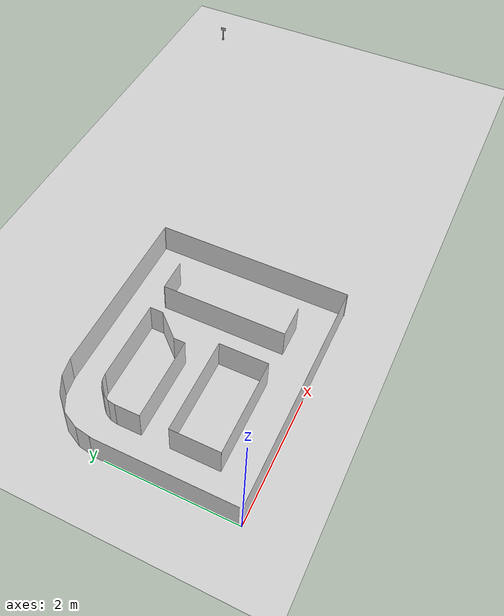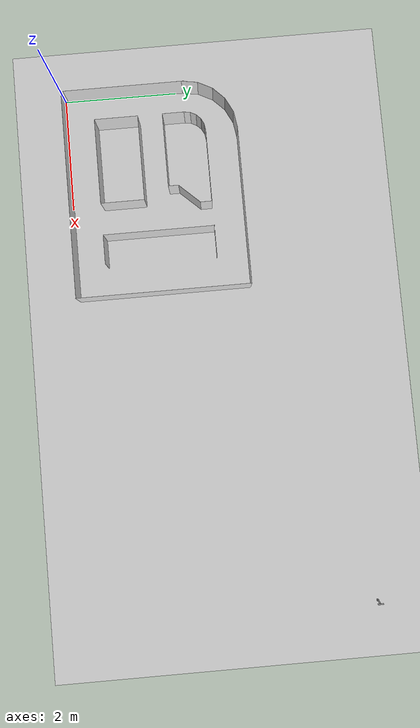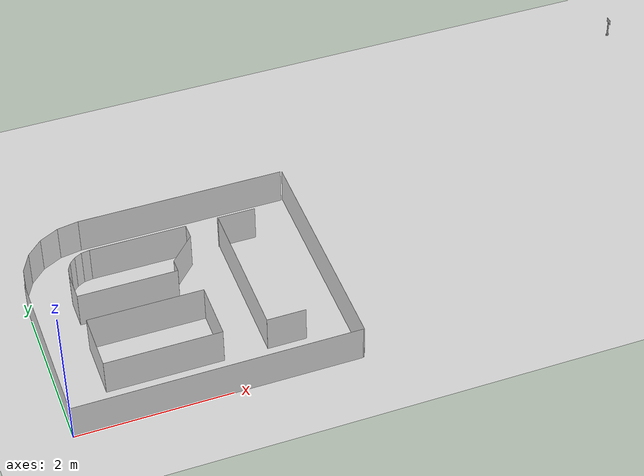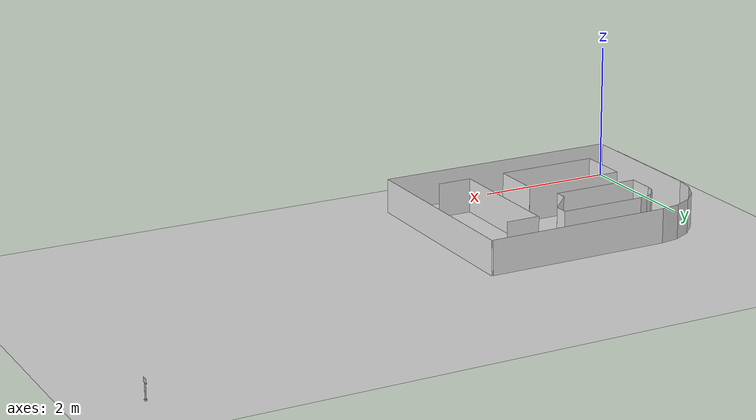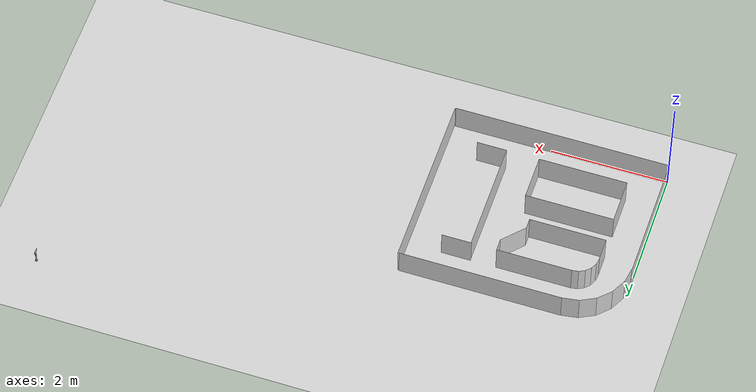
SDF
<sdf version="1.6">
 <world name="default">
  <light name="sun" type="directional">
   <pose>0 0 10 0 -0 0</pose>
   <diffuse>0.8 0.8 0.8 1</diffuse>
   <specular>0.1 0.1 0.1 1</specular>
   <attenuation>
    <range>1000</range>
    <constant>0.9</constant>
    <linear>0.01</linear>
    <quadratic>0.001</quadratic>
   </attenuation>
   <direction>-0.5 0.5 -1</direction>
  </light>
  <model name="ground_plane">
   <static>1</static>
   <link name="link">
    <collision name="collision">
     <geometry><plane><normal>0 0 1</normal><size>100 100</size></plane></geometry>
     <surface><friction><ode><mu>100</mu><mu2>50</mu2></ode></friction></surface>
    </collision>
    <visual name="visual">
     <cast_shadows>0</cast_shadows>
     <geometry><plane><normal>0 0 1</normal><size>100 100</size></plane></geometry>
     <material>
      <script><uri>file://media/materials/scripts/gazebo.material</uri><name>Gazebo/Grey</name></script>
     </material>
    </visual>
   </link>
  </model>
  <model name="wall_0">
   <static>1</static>
   <link name="link">
    <collision name="collision"><geometry><box><size>2.1336 0.001 1</size></box></geometry></collision>
    <visual name="visual">
     <geometry><box><size>2.1336 0.001 1</size></box></geometry>
     <material>
      <script><name>Gazebo/White</name><uri>file://media/materials/scripts/gazebo.material</uri></script>
     </material>
    </visual>
   </link>
   <pose>0 1.11352 0 0 -0 1.5708</pose>
  </model>
  <model name="wall_1">
   <static>1</static>
   <link name="link">
    <collision name="collision"><geometry><box><size>0.286088 0.001 1</size></box></geometry></collision>
    <visual name="visual">
     <geometry><box><size>0.286088 0.001 1</size></box></geometry>
     <material>
      <script><name>Gazebo/White</name><uri>file://media/materials/scripts/gazebo.material</uri></script>
     </material>
    </visual>
   </link>
   <pose>0.022377 2.27489 0 0 -0 1.41372</pose>
  </model>
  <model name="wall_2">
   <static>1</static>
   <link name="link">
    <collision name="collision"><geometry><box><size>0.286088 0.001 1</size></box></geometry></collision>
    <visual name="visual">
     <geometry><box><size>0.286088 0.001 1</size></box></geometry>
     <material>
      <script><name>Gazebo/White</name><uri>file://media/materials/scripts/gazebo.material</uri></script>
     </material>
    </visual>
   </link>
   <pose>0.109695 2.54362 0 0 -0 1.09956</pose>
  </model>
  <model name="wall_3">
   <static>1</static>
   <link name="link">
    <collision name="collision"><geometry><box><size>0.286088 0.001 1</size></box></geometry></collision>
    <visual name="visual">
     <geometry><box><size>0.286088 0.001 1</size></box></geometry>
     <material>
      <script><name>Gazebo/White</name><uri>file://media/materials/scripts/gazebo.material</uri></script>
     </material>
    </visual>
   </link>
   <pose>0.275783 2.77222 0 0 -0 0.785398</pose>
  </model>
  <model name="wall_4">
   <static>1</static>
   <link name="link">
    <collision name="collision"><geometry><box><size>0.286088 0.001 1</size></box></geometry></collision>
    <visual name="visual">
     <geometry><box><size>0.286088 0.001 1</size></box></geometry>
     <material>
      <script><name>Gazebo/White</name><uri>file://media/materials/scripts/gazebo.material</uri></script>
     </material>
    </visual>
   </link>
   <pose>0.504383 2.93831 0 0 -0 0.471239</pose>
  </model>
  <model name="wall_5">
   <static>1</static>
   <link name="link">
    <collision name="collision"><geometry><box><size>0.286088 0.001 1</size></box></geometry></collision>
    <visual name="visual">
     <geometry><box><size>0.286088 0.001 1</size></box></geometry>
     <material>
      <script><name>Gazebo/White</name><uri>file://media/materials/scripts/gazebo.material</uri></script>
     </material>
    </visual>
   </link>
   <pose>0.773119 3.02563 0 0 -0 0.15708</pose>
  </model>
  <model name="wall_6">
   <static>1</static>
   <link name="link">
    <collision name="collision"><geometry><box><size>2.74321 0.001 1</size></box></geometry></collision>
    <visual name="visual">
     <geometry><box><size>2.74321 0.001 1</size></box></geometry>
     <material>
      <script><name>Gazebo/White</name><uri>file://media/materials/scripts/gazebo.material</uri></script>
     </material>
    </visual>
   </link>
   <pose>2.286 3.04801 0 0 -0 0</pose>
  </model>
  <model name="wall_7">
   <static>1</static>
   <link name="link">
    <collision name="collision"><geometry><box><size>3.04801 0.001 1</size></box></geometry></collision>
    <visual name="visual">
     <geometry><box><size>3.04801 0.001 1</size></box></geometry>
     <material>
      <script><name>Gazebo/White</name><uri>file://media/materials/scripts/gazebo.material</uri></script>
     </material>
    </visual>
   </link>
   <pose>3.67683 1.52518 0 0 0 -1.5708</pose>
  </model>
  <model name="wall_8">
   <static>1</static>
   <link name="link">
    <collision name="collision"><geometry><box><size>3.65761 0.001 1</size></box></geometry></collision>
    <visual name="visual">
     <geometry><box><size>3.65761 0.001 1</size></box></geometry>
     <material>
      <script><name>Gazebo/White</name><uri>file://media/materials/scripts/gazebo.material</uri></script>
     </material>
    </visual>
   </link>
   <pose>1.83626 0.009034 0 0 0 -3.14159</pose>
  </model>
  <model name="wall_9">
   <static>1</static>
   <link name="link">
    <collision name="collision"><geometry><box><size>0.762002 0.001 1</size></box></geometry></collision>
    <visual name="visual">
     <geometry><box><size>0.762002 0.001 1</size></box></geometry>
     <material>
      <script><name>Gazebo/White</name><uri>file://media/materials/scripts/gazebo.material</uri></script>
     </material>
    </visual>
   </link>
   <pose>0.558801 0.939802 0 0 -0 1.5708</pose>
  </model>
  <model name="wall_10">
   <static>1</static>
   <link name="link">
    <collision name="collision"><geometry><box><size>1.4986 0.001 1</size></box></geometry></collision>
    <visual name="visual">
     <geometry><box><size>1.4986 0.001 1</size></box></geometry>
     <material>
      <script><name>Gazebo/White</name><uri>file://media/materials/scripts/gazebo.material</uri></script>
     </material>
    </visual>
   </link>
   <pose>1.3081 1.3208 0 0 -0 0</pose>
  </model>
  <model name="wall_11">
   <static>1</static>
   <link name="link">
    <collision name="collision"><geometry><box><size>0.762002 0.001 1</size></box></geometry></collision>
    <visual name="visual">
     <geometry><box><size>0.762002 0.001 1</size></box></geometry>
     <material>
      <script><name>Gazebo/White</name><uri>file://media/materials/scripts/gazebo.material</uri></script>
     </material>
    </visual>
   </link>
   <pose>2.0574 0.939802 0 0 0 -1.5708</pose>
  </model>
  <model name="wall_12">
   <static>1</static>
   <link name="link">
    <collision name="collision"><geometry><box><size>1.4986 0.001 1</size></box></geometry></collision>
    <visual name="visual">
     <geometry><box><size>1.4986 0.001 1</size></box></geometry>
     <material>
      <script><name>Gazebo/White</name><uri>file://media/materials/scripts/gazebo.material</uri></script>
     </material>
    </visual>
   </link>
   <pose>1.3081 0.558801 0 0 0 -3.14159</pose>
  </model>
  <model name="wall_13">
   <static>1</static>
   <link name="link">
    <collision name="collision"><geometry><box><size>0.381001 0.001 1</size></box></geometry></collision>
    <visual name="visual">
     <geometry><box><size>0.381001 0.001 1</size></box></geometry>
     <material>
      <script><name>Gazebo/White</name><uri>file://media/materials/scripts/gazebo.material</uri></script>
     </material>
    </visual>
   </link>
   <pose>0.558801 1.9431 0 0 -0 1.5708</pose>
  </model>
  <model name="wall_14">
   <static>1</static>
   <link name="link">
    <collision name="collision"><geometry><box><size>0.111256 0.001 1</size></box></geometry></collision>
    <visual name="visual">
     <geometry><box><size>0.111256 0.001 1</size></box></geometry>
     <material>
      <script><name>Gazebo/White</name><uri>file://media/materials/scripts/gazebo.material</uri></script>
     </material>
    </visual>
   </link>
   <pose>0.567503 2.18855 0 0 -0 1.41372</pose>
  </model>
  <model name="wall_15">
   <static>1</static>
   <link name="link">
    <collision name="collision"><geometry><box><size>0.111256 0.001 1</size></box></geometry></collision>
    <visual name="visual">
     <geometry><box><size>0.111256 0.001 1</size></box></geometry>
     <material>
      <script><name>Gazebo/White</name><uri>file://media/materials/scripts/gazebo.material</uri></script>
     </material>
    </visual>
   </link>
   <pose>0.60146 2.29306 0 0 -0 1.09956</pose>
  </model>
  <model name="wall_16">
   <static>1</static>
   <link name="link">
    <collision name="collision"><geometry><box><size>0.111256 0.001 1</size></box></geometry></collision>
    <visual name="visual">
     <geometry><box><size>0.111256 0.001 1</size></box></geometry>
     <material>
      <script><name>Gazebo/White</name><uri>file://media/materials/scripts/gazebo.material</uri></script>
     </material>
    </visual>
   </link>
   <pose>0.66605 2.38196 0 0 -0 0.785398</pose>
  </model>
  <model name="wall_17">
   <static>1</static>
   <link name="link">
    <collision name="collision"><geometry><box><size>0.111256 0.001 1</size></box></geometry></collision>
    <visual name="visual">
     <geometry><box><size>0.111256 0.001 1</size></box></geometry>
     <material>
      <script><name>Gazebo/White</name><uri>file://media/materials/scripts/gazebo.material</uri></script>
     </material>
    </visual>
   </link>
   <pose>0.75495 2.44655 0 0 -0 0.471239</pose>
  </model>
  <model name="wall_18">
   <static>1</static>
   <link name="link">
    <collision name="collision"><geometry><box><size>0.111256 0.001 1</size></box></geometry></collision>
    <visual name="visual">
     <geometry><box><size>0.111256 0.001 1</size></box></geometry>
     <material>
      <script><name>Gazebo/White</name><uri>file://media/materials/scripts/gazebo.material</uri></script>
     </material>
    </visual>
   </link>
   <pose>0.859458 2.4805 0 0 -0 0.15708</pose>
  </model>
  <model name="wall_19">
   <static>1</static>
   <link name="link">
    <collision name="collision"><geometry><box><size>1.27 0.001 1</size></box></geometry></collision>
    <visual name="visual">
     <geometry><box><size>1.27 0.001 1</size></box></geometry>
     <material>
      <script><name>Gazebo/White</name><uri>file://media/materials/scripts/gazebo.material</uri></script>
     </material>
    </visual>
   </link>
   <pose>1.5494 2.48921 0 0 -0 0</pose>
  </model>
  <model name="wall_20">
   <static>1</static>
   <link name="link">
    <collision name="collision"><geometry><box><size>0.2032 0.001 1</size></box></geometry></collision>
    <visual name="visual">
     <geometry><box><size>0.2032 0.001 1</size></box></geometry>
     <material>
      <script><name>Gazebo/White</name><uri>file://media/materials/scripts/gazebo.material</uri></script>
     </material>
    </visual>
   </link>
   <pose>2.1844 2.38761 0 0 0 -1.5708</pose>
  </model>
  <model name="wall_21">
   <static>1</static>
   <link name="link">
    <collision name="collision"><geometry><box><size>0.485267 0.001 1</size></box></geometry></collision>
    <visual name="visual">
     <geometry><box><size>0.485267 0.001 1</size></box></geometry>
     <material>
      <script><name>Gazebo/White</name><uri>file://media/materials/scripts/gazebo.material</uri></script>
     </material>
    </visual>
   </link>
   <pose>2.0193 2.1082 0 0 0 -2.31917</pose>
  </model>
  <model name="wall_22">
   <static>1</static>
   <link name="link">
    <collision name="collision"><geometry><box><size>0.1778 0.001 1</size></box></geometry></collision>
    <visual name="visual">
     <geometry><box><size>0.1778 0.001 1</size></box></geometry>
     <material>
      <script><name>Gazebo/White</name><uri>file://media/materials/scripts/gazebo.material</uri></script>
     </material>
    </visual>
   </link>
   <pose>1.8542 1.8415 0 0 0 -1.5708</pose>
  </model>
  <model name="wall_23">
   <static>1</static>
   <link name="link">
    <collision name="collision"><geometry><box><size>1.2954 0.001 1</size></box></geometry></collision>
    <visual name="visual">
     <geometry><box><size>1.2954 0.001 1</size></box></geometry>
     <material>
      <script><name>Gazebo/White</name><uri>file://media/materials/scripts/gazebo.material</uri></script>
     </material>
    </visual>
   </link>
   <pose>1.2065 1.7526 0 0 0 -3.14159</pose>
  </model>
  <model name="wall_24">
   <static>1</static>
   <link name="link">
    <collision name="collision"><geometry><box><size>0.508001 0.001 1</size></box></geometry></collision>
    <visual name="visual">
     <geometry><box><size>0.508001 0.001 1</size></box></geometry>
     <material>
      <script><name>Gazebo/White</name><uri>file://media/materials/scripts/gazebo.material</uri></script>
     </material>
    </visual>
   </link>
   <pose>2.86029 2.49259 0 0 -0 0</pose>
  </model>
  <model name="wall_25">
   <static>1</static>
   <link name="link">
    <collision name="collision"><geometry><box><size>0.508001 0.001 1</size></box></geometry></collision>
    <visual name="visual">
     <geometry><box><size>0.508001 0.001 1</size></box></geometry>
     <material>
      <script><name>Gazebo/White</name><uri>file://media/materials/scripts/gazebo.material</uri></script>
     </material>
    </visual>
   </link>
   <pose>2.87021 0.558801 0 0 0 -3.14159</pose>
  </model>
  <model name="wall_26">
   <static>1</static>
   <link name="link">
    <collision name="collision"><geometry><box><size>1.9304 0.001 1</size></box></geometry></collision>
    <visual name="visual">
     <geometry><box><size>1.9304 0.001 1</size></box></geometry>
     <material>
      <script><name>Gazebo/White</name><uri>file://media/materials/scripts/gazebo.material</uri></script>
     </material>
    </visual>
   </link>
   <pose>2.6162 1.524 0 0 -0 1.5708</pose>
  </model>
  <model name="flag">
   <link name="plate">
    <pose>0 0 0.2425 0 -0 0</pose>
    <collision name="collision">
     <geometry><box><size>0.001 0.1 0.065</size></box></geometry>
     <surface><friction><ode><mu>1</mu><mu2>1</mu2></ode></friction></surface>
    </collision>
    <visual name="visual"><geometry><box><size>0.001 0.1 0.065</size></box></geometry></visual>
    <inertial>
     <inertia><ixx>0.1</ixx><ixy>0</ixy><ixz>0</ixz><iyy>0.1</iyy><iyz>0</iyz><izz>0.1</izz></inertia>
     <mass>0.1</mass>
    </inertial>
   </link>
   <link name="pole">
    <pose>0 0 0.11 0 -0 0</pose>
    <collision name="collision">
     <geometry><cylinder><radius>0.01</radius><length>0.2</length></cylinder></geometry>
     <surface>
      <friction><torsional><coefficient>1</coefficient></torsional><ode><mu>1</mu><mu2>1</mu2></ode></friction>
     </surface>
    </collision>
    <visual name="visual">
     <geometry><cylinder><radius>0.01</radius><length>0.2</length></cylinder></geometry>
    </visual>
    <inertial>
     <inertia><ixx>1</ixx><ixy>0</ixy><ixz>0</ixz><iyy>1</iyy><iyz>0</iyz><izz>1</izz></inertia>
     <mass>1</mass>
    </inertial>
   </link>
   <link name="base">
    <collision name="collision">
     <geometry><cylinder><radius>0.02</radius><length>0.02</length></cylinder></geometry>
     <surface><friction><ode><mu>0.01</mu><mu2>0.01</mu2></ode></friction></surface>
    </collision>
    <visual name="visual">
     <geometry><cylinder><radius>0.02</radius><length>0.02</length></cylinder></geometry>
    </visual>
    <inertial>
     <inertia><ixx>0.1</ixx><ixy>0</ixy><ixz>0</ixz><iyy>0.1</iyy><iyz>0</iyz><izz>0.1</izz></inertia>
     <mass>0.1</mass>
    </inertial>
    <gravity>0</gravity>
   </link>
   <joint name="base_pole" type="fixed">
    <parent>base</parent>
    <child>pole</child>
    <pose>0 0 0.02 0 -0 0</pose>
   </joint>
   <joint name="pole_plate" type="fixed">
    <parent>pole</parent>
    <child>plate</child>
    <pose>0 0 0.1 0 -0 0</pose>
   </joint>
   <pose>9.3018 4.73641 0.010011 0.00038 0.000415 -3.13653</pose>
  </model>
  <gravity>0 0 -9.8</gravity>
  <magnetic_field>6e-06 2.3e-05 -4.2e-05</magnetic_field>
  <atmosphere type="adiabatic"/>
  <physics name="default_physics" default="0" type="ode">
   <max_step_size>0.001</max_step_size>
   <real_time_factor>1</real_time_factor>
   <real_time_update_rate>1000</real_time_update_rate>
  </physics>
  <scene><ambient>0.4 0.4 0.4 1</ambient><background>0.7 0.7 0.7 1</background><shadows>1</shadows></scene>
  <spherical_coordinates>
   <surface_model>EARTH_WGS84</surface_model>
   <latitude_deg>0</latitude_deg>
   <longitude_deg>0</longitude_deg>
   <elevation>0</elevation>
   <heading_deg>0</heading_deg>
  </spherical_coordinates>
  <light name="user_spot_light_0" type="spot">
   <pose>-1.42453 1.18186 1 0 -0 0</pose>
   <diffuse>0.5 0.5 0.5 1</diffuse>
   <specular>0.1 0.1 0.1 1</specular>
   <direction>0 0 -1</direction>
   <attenuation>
    <range>20</range>
    <constant>0.5</constant>
    <linear>0.01</linear>
    <quadratic>0.001</quadratic>
   </attenuation>
   <cast_shadows>0</cast_shadows>
   <spot><inner_angle>0.6</inner_angle><outer_angle>1</outer_angle><falloff>1</falloff></spot>
  </light>
  <light name="user_spot_light_1" type="spot">
   <pose>0.680931 4.17574 1 0 -0 0</pose>
   <diffuse>0.5 0.5 0.5 1</diffuse>
   <specular>0.1 0.1 0.1 1</specular>
   <direction>0 0 -1</direction>
   <attenuation>
    <range>20</range>
    <constant>0.5</constant>
    <linear>0.01</linear>
    <quadratic>0.001</quadratic>
   </attenuation>
   <cast_shadows>0</cast_shadows>
   <spot><inner_angle>0.6</inner_angle><outer_angle>1</outer_angle><falloff>1</falloff></spot>
  </light>
  <light name="user_spot_light_2" type="spot">
   <pose>-2.54686 0.641032 1 0 -0 0</pose>
   <diffuse>0.5 0.5 0.5 1</diffuse>
   <specular>0.1 0.1 0.1 1</specular>
   <direction>0 0 -1</direction>
   <attenuation>
    <range>20</range>
    <constant>0.5</constant>
    <linear>0.01</linear>
    <quadratic>0.001</quadratic>
   </attenuation>
   <cast_shadows>0</cast_shadows>
   <spot><inner_angle>0.6</inner_angle><outer_angle>1</outer_angle><falloff>1</falloff></spot>
  </light>
  <light name="user_spot_light_2_clone" type="spot">
   <pose>-0.706935 1.84185 0.348204 0 -0 0</pose>
   <diffuse>0.5 0.5 0.5 1</diffuse>
   <specular>0.1 0.1 0.1 1</specular>
   <direction>0 0 -1</direction>
   <attenuation>
    <range>20</range>
    <constant>0.5</constant>
    <linear>0.01</linear>
    <quadratic>0.001</quadratic>
   </attenuation>
   <spot><inner_angle>0.6</inner_angle><outer_angle>1</outer_angle><falloff>1</falloff></spot>
  </light>
  <light name="user_spot_light_3" type="spot">
   <pose>4.76581 2.74901 1 0 -0 0</pose>
   <diffuse>0.5 0.5 0.5 1</diffuse>
   <specular>0.1 0.1 0.1 1</specular>
   <direction>0 0 -1</direction>
   <attenuation>
    <range>20</range>
    <constant>0.5</constant>
    <linear>0.01</linear>
    <quadratic>0.001</quadratic>
   </attenuation>
   <cast_shadows>0</cast_shadows>
   <spot><inner_angle>0.6</inner_angle><outer_angle>1</outer_angle><falloff>1</falloff></spot>
  </light>
  <light name="user_spot_light_4" type="spot">
   <pose>5.64228 2.75656 1 0 -0 0</pose>
   <diffuse>0.5 0.5 0.5 1</diffuse>
   <specular>0.1 0.1 0.1 1</specular>
   <direction>0 0 -1</direction>
   <attenuation>
    <range>20</range>
    <constant>0.5</constant>
    <linear>0.01</linear>
    <quadratic>0.001</quadratic>
   </attenuation>
   <cast_shadows>0</cast_shadows>
   <spot><inner_angle>0.6</inner_angle><outer_angle>1</outer_angle><falloff>1</falloff></spot>
  </light>
  <light name="user_spot_light_5" type="spot">
   <pose>5.79503 0.66696 1 0 -0 0</pose>
   <diffuse>0.5 0.5 0.5 1</diffuse>
   <specular>0.1 0.1 0.1 1</specular>
   <direction>0 0 -1</direction>
   <attenuation>
    <range>20</range>
    <constant>0.5</constant>
    <linear>0.01</linear>
    <quadratic>0.001</quadratic>
   </attenuation>
   <cast_shadows>0</cast_shadows>
   <spot><inner_angle>0.6</inner_angle><outer_angle>1</outer_angle><falloff>1</falloff></spot>
  </light>
  <light name="user_spot_light_6" type="spot">
   <pose>2.54536 -1.19813 1 0 -0 0</pose>
   <diffuse>0.5 0.5 0.5 1</diffuse>
   <specular>0.1 0.1 0.1 1</specular>
   <direction>0 0 -1</direction>
   <attenuation>
    <range>20</range>
    <constant>0.5</constant>
    <linear>0.01</linear>
    <quadratic>0.001</quadratic>
   </attenuation>
   <cast_shadows>0</cast_shadows>
   <spot><inner_angle>0.6</inner_angle><outer_angle>1</outer_angle><falloff>1</falloff></spot>
  </light>
  <light name="user_spot_light_7" type="spot">
   <pose>5.73025 0.543667 1 0 -0 0</pose>
   <diffuse>0.5 0.5 0.5 1</diffuse>
   <specular>0.1 0.1 0.1 1</specular>
   <direction>0 0 -1</direction>
   <attenuation>
    <range>20</range>
    <constant>0.5</constant>
    <linear>0.01</linear>
    <quadratic>0.001</quadratic>
   </attenuation>
   <cast_shadows>0</cast_shadows>
   <spot><inner_angle>0.6</inner_angle><outer_angle>1</outer_angle><falloff>1</falloff></spot>
  </light>
 </world>
</sdf>
